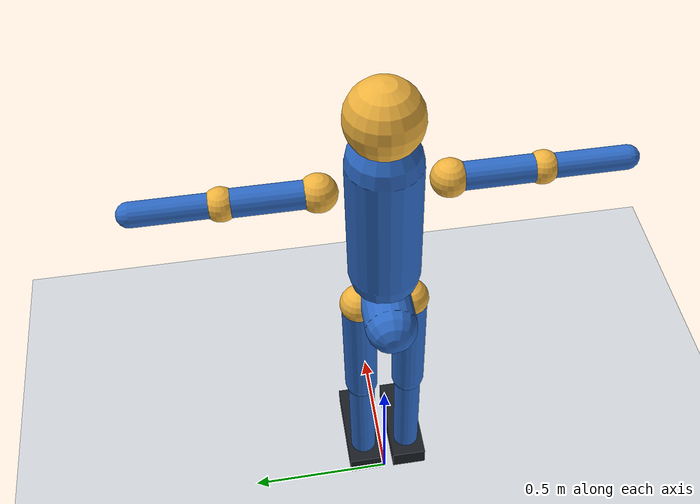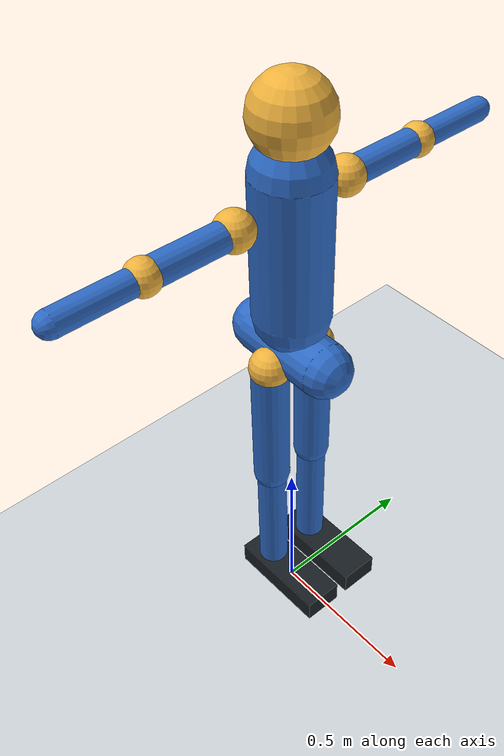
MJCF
<mujoco model="basic_humanoid">
  <compiler angle="radian" inertiafromgeom="true" autolimits="true"/>
  <option timestep="0.01" gravity="0 0 -9.81" integrator="RK4"/>

  <default>
    <joint damping="1.0" armature="0.02" limited="true"/>
    <geom density="650" friction="1.0 0.1 0.1"/>
    <motor ctrllimited="true" ctrlrange="-1 1"/>
  </default>

  <asset>
    <material name="body_mat" rgba="0.18 0.42 0.78 1"/>
    <material name="joint_mat" rgba="0.94 0.70 0.24 1"/>
    <material name="foot_mat" rgba="0.10 0.12 0.14 1"/>
    <material name="floor_mat" rgba="0.82 0.84 0.86 1"/>
  </asset>

  <worldbody>
    <light name="key_light" pos="1 -3 4" dir="-0.2 0.6 -1" diffuse="0.8 0.8 0.8"/>
    <camera name="front" pos="2.2 -3.0 1.4" xyaxes="0.80 0.60 0 -0.24 0.32 0.92"/>
    <geom name="floor" type="plane" size="4 4 0.05" material="floor_mat"/>

    <body name="pelvis" pos="0 0 1.05">
      <freejoint name="root"/>
      <geom name="pelvis_geom" type="capsule" fromto="-0.13 0 0 0.13 0 0" size="0.08" material="body_mat"/>

      <body name="torso" pos="0 0 0.12">
        <joint name="abdomen_y" type="hinge" axis="0 1 0" range="-0.45 0.45"/>
        <geom name="torso_geom" type="capsule" fromto="0 0 0 0 0 0.42" size="0.11" material="body_mat"/>

        <body name="head" pos="0 0 0.57">
          <geom name="head_geom" type="sphere" size="0.11" material="joint_mat"/>
        </body>

        <body name="right_upper_arm" pos="0 -0.18 0.34">
          <joint name="shoulder_right" type="hinge" axis="0 1 0" range="-1.7 1.1"/>
          <geom name="right_shoulder_geom" type="sphere" size="0.055" material="joint_mat"/>
          <geom name="right_upper_arm_geom" type="capsule" fromto="0 0 0 0 -0.26 0" size="0.04" material="body_mat"/>

          <body name="right_forearm" pos="0 -0.26 0">
            <joint name="elbow_right" type="hinge" axis="0 1 0" range="-1.7 0.1"/>
            <geom name="right_elbow_geom" type="sphere" size="0.048" material="joint_mat"/>
            <geom name="right_forearm_geom" type="capsule" fromto="0 0 0 0 -0.24 0" size="0.035" material="body_mat"/>
          </body>
        </body>

        <body name="left_upper_arm" pos="0 0.18 0.34">
          <joint name="shoulder_left" type="hinge" axis="0 1 0" range="-1.7 1.1"/>
          <geom name="left_shoulder_geom" type="sphere" size="0.055" material="joint_mat"/>
          <geom name="left_upper_arm_geom" type="capsule" fromto="0 0 0 0 0.26 0" size="0.04" material="body_mat"/>

          <body name="left_forearm" pos="0 0.26 0">
            <joint name="elbow_left" type="hinge" axis="0 1 0" range="-1.7 0.1"/>
            <geom name="left_elbow_geom" type="sphere" size="0.048" material="joint_mat"/>
            <geom name="left_forearm_geom" type="capsule" fromto="0 0 0 0 0.24 0" size="0.035" material="body_mat"/>
          </body>
        </body>
      </body>

      <body name="right_thigh" pos="0 -0.08 -0.03">
        <joint name="hip_right" type="hinge" axis="0 1 0" range="-1.2 1.0"/>
        <geom name="right_hip_geom" type="sphere" size="0.06" material="joint_mat"/>
        <geom name="right_thigh_geom" type="capsule" fromto="0 0 0 0 0 -0.42" size="0.055" material="body_mat"/>

        <body name="right_shin" pos="0 0 -0.42">
          <joint name="knee_right" type="hinge" axis="0 1 0" range="-1.8 0.05"/>
          <geom name="right_knee_geom" type="sphere" size="0.052" material="joint_mat"/>
          <geom name="right_shin_geom" type="capsule" fromto="0 0 0 0 0 -0.40" size="0.045" material="body_mat"/>

          <body name="right_foot" pos="0 0 -0.40">
            <joint name="ankle_right" type="hinge" axis="0 1 0" range="-0.7 0.7"/>
            <geom name="right_ankle_geom" type="sphere" size="0.045" material="joint_mat"/>
            <geom name="right_foot_geom" type="box" pos="0.08 0 -0.035" size="0.16 0.06 0.035" material="foot_mat"/>
          </body>
        </body>
      </body>

      <body name="left_thigh" pos="0 0.08 -0.03">
        <joint name="hip_left" type="hinge" axis="0 1 0" range="-1.2 1.0"/>
        <geom name="left_hip_geom" type="sphere" size="0.06" material="joint_mat"/>
        <geom name="left_thigh_geom" type="capsule" fromto="0 0 0 0 0 -0.42" size="0.055" material="body_mat"/>

        <body name="left_shin" pos="0 0 -0.42">
          <joint name="knee_left" type="hinge" axis="0 1 0" range="-1.8 0.05"/>
          <geom name="left_knee_geom" type="sphere" size="0.052" material="joint_mat"/>
          <geom name="left_shin_geom" type="capsule" fromto="0 0 0 0 0 -0.40" size="0.045" material="body_mat"/>

          <body name="left_foot" pos="0 0 -0.40">
            <joint name="ankle_left" type="hinge" axis="0 1 0" range="-0.7 0.7"/>
            <geom name="left_ankle_geom" type="sphere" size="0.045" material="joint_mat"/>
            <geom name="left_foot_geom" type="box" pos="0.08 0 -0.035" size="0.16 0.06 0.035" material="foot_mat"/>
          </body>
        </body>
      </body>
    </body>
  </worldbody>

  <actuator>
    <motor name="abdomen_y_motor" joint="abdomen_y" gear="80"/>
    <motor name="shoulder_right_motor" joint="shoulder_right" gear="45"/>
    <motor name="elbow_right_motor" joint="elbow_right" gear="35"/>
    <motor name="shoulder_left_motor" joint="shoulder_left" gear="45"/>
    <motor name="elbow_left_motor" joint="elbow_left" gear="35"/>
    <motor name="hip_right_motor" joint="hip_right" gear="85"/>
    <motor name="knee_right_motor" joint="knee_right" gear="85"/>
    <motor name="ankle_right_motor" joint="ankle_right" gear="55"/>
    <motor name="hip_left_motor" joint="hip_left" gear="85"/>
    <motor name="knee_left_motor" joint="knee_left" gear="85"/>
    <motor name="ankle_left_motor" joint="ankle_left" gear="55"/>
  </actuator>
</mujoco>
